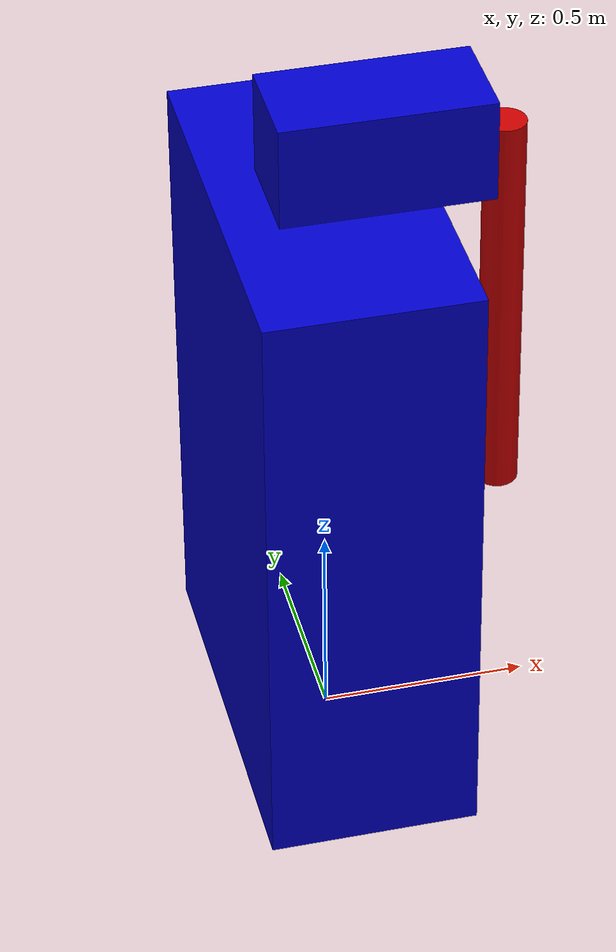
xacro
<?xml version="1.0"?>

<robot xmlns:xacro="http://ros.org/wiki/xacro">

    <xacro:property name="base_length" value="0.5" />
    <xacro:property name="base_width" value="1.0" />
    <xacro:property name="base_height" value="1.5" />

  <material name="black">
    <color rgba="0.0 0.0 0.0 1.0"/>
  </material>

  <material name="white">
    <color rgba="1.0 1.0 1.0 1.0"/>
  </material>

  <material name="red">
    <color rgba="0.8 0.0 0.0 1.0"/>
  </material>

  <material name="blue">
    <color rgba="0.0 0.0 0.8 1.0"/>
  </material>

  <material name="green">
    <color rgba="0.0 0.8 0.0 1.0"/>
  </material>

  <material name="grey">
    <color rgba="0.5 0.5 0.5 1.0"/>
  </material>

  <xacro:macro name="box_inertia" params="m l w h xyz rpy">
        <inertial>
            <origin xyz="${xyz}" rpy="${rpy}" />
            <mass value="${m}" />
            <inertia ixx="${(m/12)*(h*h + l*l)}" ixy="0" ixz="0"
                     iyy="${(m/12)*(w*w + l*l)}" iyz="0"
                     izz="${(m/12)*(h*h + w*w)}" />
        </inertial>
    </xacro:macro>

    <xacro:macro name="cylinder_inertia" params="m r l xyz rpy">
      <inertial>
          <origin xyz="${xyz}" rpy="${rpy}" />
          <mass value="${m}" />
          <inertia ixx="${(m/12)*(3*r*r + l*l)}" ixy="0" ixz="0"
                   iyy="${(m/12)*(3*r*r + l*l)}" iyz="0"
                   izz="${(m/2)*(r*r)}" />
      </inertial>
  </xacro:macro>

  <!-- Link 1 -->
  <link name="link1">
    <visual>
        <geometry>
            <box size="${base_length} ${base_width} ${base_height}" />
        </geometry>
        <origin xyz="0 0 ${base_height / 2.0}" rpy="0 0 0" />
        <material name="blue" />
    </visual>
    <collision>
        <geometry>
            <box size="${base_length} ${base_width} ${base_height}" />
        </geometry>
        <origin xyz="0 0 ${base_height / 2.0}" rpy="0 0 0" />
    </collision>
    <xacro:box_inertia m="5.0" l="${2*base_length}" w="${2*base_width}" h="${2*base_height}"
                       xyz="0 0 ${base_height / 2.0}" rpy="0 0 0" />
</link>

<link name="link2">
  <visual>
      <geometry>
          <box size="0.5 0.25 0.25" />
      </geometry>
      <origin xyz="0 0 0.125" rpy="0 0 0" />
      <material name="blue" />
  </visual>
  <collision>
      <geometry>
          <box size="0.5 0.25 0.25" />
      </geometry>
      <origin xyz="0 0 0.125" rpy="0 0 0" />
  </collision>
  <xacro:box_inertia m="5.0" l="1.0" w="0.5" h="0.5"
                     xyz="0 0 0.125" rpy="0 0 0" />
</link>

<link name="pendullum">
  <visual>

    <geometry>
        <cylinder radius="0.05" length="1.0" />
    </geometry>
      <origin xyz="0 0 -0.5" rpy="0 0 0" />
      <material name="red" />
  </visual>
  <collision>
    <geometry>
      <cylinder radius="0.05" length="1.0" />
    </geometry>
      <origin xyz="0 0 -0.5" rpy="0 0 0" />
  </collision>
  <xacro:cylinder_inertia m="1.0" r="0.05" l="1.0"
                                    xyz="0 0 -0.5" rpy="0 0 0" />
</link>

  <!-- World -->
  <link name="world"/>

  <!-- World fixed joint-->
  <joint name="world_fixed" type="fixed">
    <origin xyz="0 0 0" rpy="0 0 0"/>
    <parent link="world"/>
    <child link="link1"/>
    <dynamics friction = "0.01" damping="0.01"/>
  </joint>

  <joint name="link1_2_fixed" type="fixed">
    <origin xyz="0.125 0 1.5" rpy="0 0 0"/>
    <parent link="link1"/>
    <child link="link2"/>

  </joint>

  <joint name="link2_pendullum_joint" type="revolute">
    <origin xyz="0.3 0 0.125" rpy="0 0 0"/>
    <parent link="link2"/>
    <child link="pendullum"/>
    <axis xyz="1 0 0"/>
    <dynamics friction = "0.05" damping="0.05"/>
    <limit velocity="4.8" effort="2.4" lower="${-pi*0.8}" upper="${pi*0.8}" />
  </joint>

</robot>
